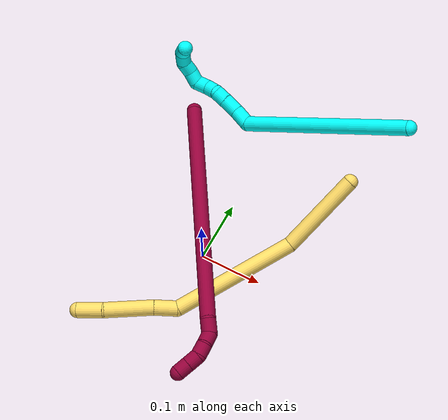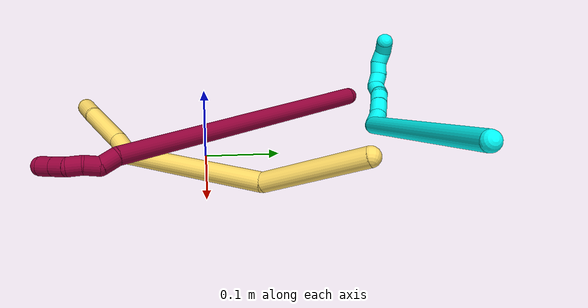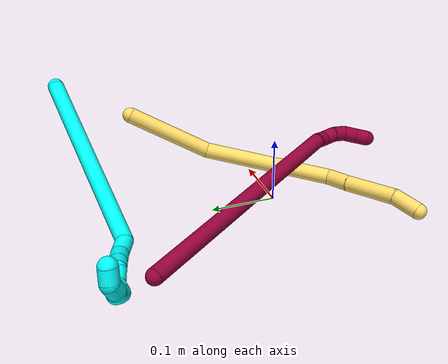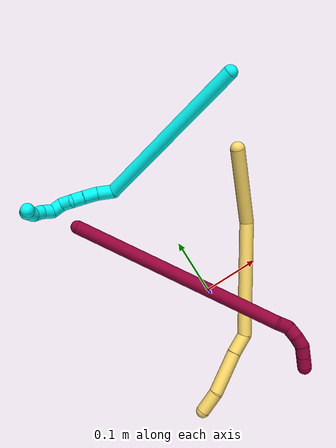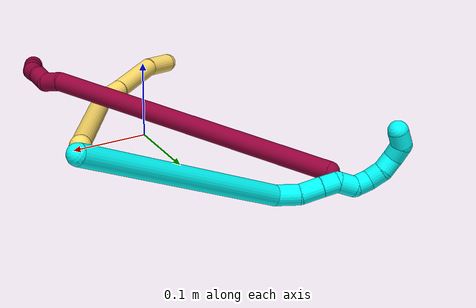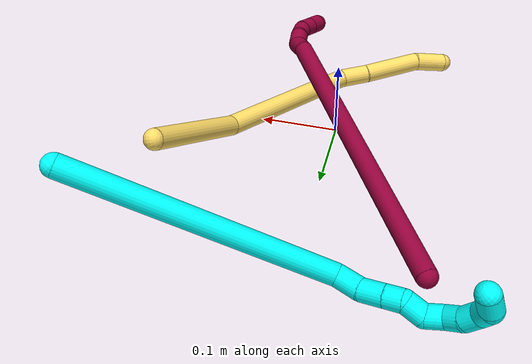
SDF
<sdf version="1.7">
 <world name="default">
  <model name="3">
   <static>0</static>
   <link name="3">
    <collision name="collision-cylinder-e_1_1_4">
     <pose>-0.024512 0.035489 0.142966 -0.243313 -0.164893 0.020205</pose>
     <geometry><cylinder><radius>0.0125</radius><length>0.298661</length></cylinder></geometry>
     <surface>
      <friction><ode><mu>1.16</mu><mu2>1.16</mu2><slip1>0</slip1><slip2>0</slip2></ode></friction>
      <contact><ode><kp>1e+06</kp><kd>1</kd><max_vel>0</max_vel><min_depth>0.001</min_depth></ode></contact>
     </surface>
    </collision>
    <visual name="visual-cylinder-e_1_1_4">
     <pose>-0.024512 0.035489 0.142966 -0.243313 -0.164893 0.020205</pose>
     <geometry><cylinder><radius>0.0125</radius><length>0.298661</length></cylinder></geometry>
     <material><ambient>0.003922 1 0.996078 1</ambient></material>
    </visual>
    <collision name="collision-cylinder-e_2_4_5">
     <pose>-0.060514 0.071444 0.295275 -0.049941 -0.887465 0.023743</pose>
     <geometry><cylinder><radius>0.0125</radius><length>0.029633</length></cylinder></geometry>
     <surface>
      <friction><ode><mu>1.16</mu><mu2>1.16</mu2><slip1>0</slip1><slip2>0</slip2></ode></friction>
      <contact><ode><kp>1e+06</kp><kd>1</kd><max_vel>0</max_vel><min_depth>0.001</min_depth></ode></contact>
     </surface>
    </collision>
    <visual name="visual-cylinder-e_2_4_5">
     <pose>-0.060514 0.071444 0.295275 -0.049941 -0.887465 0.023743</pose>
     <geometry><cylinder><radius>0.0125</radius><length>0.029633</length></cylinder></geometry>
     <material><ambient>0.003922 1 0.996078 1</ambient></material>
    </visual>
    <collision name="collision-cylinder-e_3_5_6">
     <pose>-0.083045 0.075877 0.311397 -0.529384 -0.952541 0.277859</pose>
     <geometry><cylinder><radius>0.0125</radius><length>0.027099</length></cylinder></geometry>
     <surface>
      <friction><ode><mu>1.16</mu><mu2>1.16</mu2><slip1>0</slip1><slip2>0</slip2></ode></friction>
      <contact><ode><kp>1e+06</kp><kd>1</kd><max_vel>0</max_vel><min_depth>0.001</min_depth></ode></contact>
     </surface>
    </collision>
    <visual name="visual-cylinder-e_3_5_6">
     <pose>-0.083045 0.075877 0.311397 -0.529384 -0.952541 0.277859</pose>
     <geometry><cylinder><radius>0.0125</radius><length>0.027099</length></cylinder></geometry>
     <material><ambient>0.003922 1 0.996078 1</ambient></material>
    </visual>
    <collision name="collision-cylinder-e_4_6_7">
     <pose>-0.102072 0.082806 0.323526 -0.505668 -0.917229 0.25375</pose>
     <geometry><cylinder><radius>0.0125</radius><length>0.020119</length></cylinder></geometry>
     <surface>
      <friction><ode><mu>1.16</mu><mu2>1.16</mu2><slip1>0</slip1><slip2>0</slip2></ode></friction>
      <contact><ode><kp>1e+06</kp><kd>1</kd><max_vel>0</max_vel><min_depth>0.001</min_depth></ode></contact>
     </surface>
    </collision>
    <visual name="visual-cylinder-e_4_6_7">
     <pose>-0.102072 0.082806 0.323526 -0.505668 -0.917229 0.25375</pose>
     <geometry><cylinder><radius>0.0125</radius><length>0.020119</length></cylinder></geometry>
     <material><ambient>0.003922 1 0.996078 1</ambient></material>
    </visual>
    <collision name="collision-cylinder-e_5_7_8">
     <pose>-0.115253 0.085155 0.338801 0.061755 -0.481385 -0.015162</pose>
     <geometry><cylinder><radius>0.0125</radius><length>0.022436</length></cylinder></geometry>
     <surface>
      <friction><ode><mu>1.16</mu><mu2>1.16</mu2><slip1>0</slip1><slip2>0</slip2></ode></friction>
      <contact><ode><kp>1e+06</kp><kd>1</kd><max_vel>0</max_vel><min_depth>0.001</min_depth></ode></contact>
     </surface>
    </collision>
    <visual name="visual-cylinder-e_5_7_8">
     <pose>-0.115253 0.085155 0.338801 0.061755 -0.481385 -0.015162</pose>
     <geometry><cylinder><radius>0.0125</radius><length>0.022436</length></cylinder></geometry>
     <material><ambient>0.003922 1 0.996078 1</ambient></material>
    </visual>
    <collision name="collision-cylinder-e_6_8_9">
     <pose>-0.126568 0.089966 0.355545 -0.671919 -0.61237 0.21989</pose>
     <geometry><cylinder><radius>0.0125</radius><length>0.021298</length></cylinder></geometry>
     <surface>
      <friction><ode><mu>1.16</mu><mu2>1.16</mu2><slip1>0</slip1><slip2>0</slip2></ode></friction>
      <contact><ode><kp>1e+06</kp><kd>1</kd><max_vel>0</max_vel><min_depth>0.001</min_depth></ode></contact>
     </surface>
    </collision>
    <visual name="visual-cylinder-e_6_8_9">
     <pose>-0.126568 0.089966 0.355545 -0.671919 -0.61237 0.21989</pose>
     <geometry><cylinder><radius>0.0125</radius><length>0.021298</length></cylinder></geometry>
     <material><ambient>0.003922 1 0.996078 1</ambient></material>
    </visual>
    <collision name="collision-cylinder-e_7_9_10">
     <pose>-0.142526 0.098528 0.363378 -1.25853 -1.24735 0.964958</pose>
     <geometry><cylinder><radius>0.0125</radius><length>0.02075</length></cylinder></geometry>
     <surface>
      <friction><ode><mu>1.16</mu><mu2>1.16</mu2><slip1>0</slip1><slip2>0</slip2></ode></friction>
      <contact><ode><kp>1e+06</kp><kd>1</kd><max_vel>0</max_vel><min_depth>0.001</min_depth></ode></contact>
     </surface>
    </collision>
    <visual name="visual-cylinder-e_7_9_10">
     <pose>-0.142526 0.098528 0.363378 -1.25853 -1.24735 0.964958</pose>
     <geometry><cylinder><radius>0.0125</radius><length>0.02075</length></cylinder></geometry>
     <material><ambient>0.003922 1 0.996078 1</ambient></material>
    </visual>
    <collision name="collision-cylinder-e_8_10_11">
     <pose>-0.160567 0.107359 0.363842 -1.66694 -0.962013 1.04313</pose>
     <geometry><cylinder><radius>0.0125</radius><length>0.020002</length></cylinder></geometry>
     <surface>
      <friction><ode><mu>1.16</mu><mu2>1.16</mu2><slip1>0</slip1><slip2>0</slip2></ode></friction>
      <contact><ode><kp>1e+06</kp><kd>1</kd><max_vel>0</max_vel><min_depth>0.001</min_depth></ode></contact>
     </surface>
    </collision>
    <visual name="visual-cylinder-e_8_10_11">
     <pose>-0.160567 0.107359 0.363842 -1.66694 -0.962013 1.04313</pose>
     <geometry><cylinder><radius>0.0125</radius><length>0.020002</length></cylinder></geometry>
     <material><ambient>0.003922 1 0.996078 1</ambient></material>
    </visual>
    <collision name="collision-cylinder-e_9_11_12">
     <pose>-0.177391 0.115855 0.359066 -2.55606 -1.03893 2.17139</pose>
     <geometry><cylinder><radius>0.0125</radius><length>0.020001</length></cylinder></geometry>
     <surface>
      <friction><ode><mu>1.16</mu><mu2>1.16</mu2><slip1>0</slip1><slip2>0</slip2></ode></friction>
      <contact><ode><kp>1e+06</kp><kd>1</kd><max_vel>0</max_vel><min_depth>0.001</min_depth></ode></contact>
     </surface>
    </collision>
    <visual name="visual-cylinder-e_9_11_12">
     <pose>-0.177391 0.115855 0.359066 -2.55606 -1.03893 2.17139</pose>
     <geometry><cylinder><radius>0.0125</radius><length>0.020001</length></cylinder></geometry>
     <material><ambient>0.003922 1 0.996078 1</ambient></material>
    </visual>
    <collision name="collision-cylinder-e_10_12_2">
     <pose>-0.189084 0.122489 0.346128 -2.72719 -0.312447 1.28605</pose>
     <geometry><cylinder><radius>0.0125</radius><length>0.020002</length></cylinder></geometry>
     <surface>
      <friction><ode><mu>1.16</mu><mu2>1.16</mu2><slip1>0</slip1><slip2>0</slip2></ode></friction>
      <contact><ode><kp>1e+06</kp><kd>1</kd><max_vel>0</max_vel><min_depth>0.001</min_depth></ode></contact>
     </surface>
    </collision>
    <visual name="visual-cylinder-e_10_12_2">
     <pose>-0.189084 0.122489 0.346128 -2.72719 -0.312447 1.28605</pose>
     <geometry><cylinder><radius>0.0125</radius><length>0.020002</length></cylinder></geometry>
     <material><ambient>0.003922 1 0.996078 1</ambient></material>
    </visual>
    <collision name="collision-sphere-2">
     <pose>-0.192158 0.126321 0.337417 0 -0 0</pose>
     <geometry><sphere><radius>0.0125</radius></sphere></geometry>
     <surface>
      <friction><ode><mu>1.16</mu><mu2>1.16</mu2><slip1>0</slip1><slip2>0</slip2></ode></friction>
      <contact><ode><kp>1e+06</kp><kd>1</kd><max_vel>0</max_vel><min_depth>0.001</min_depth></ode></contact>
     </surface>
    </collision>
    <visual name="visual-sphere-2">
     <pose>-0.192158 0.126321 0.337417 0 -0 0</pose>
     <geometry><sphere><radius>0.0125</radius></sphere></geometry>
     <material><ambient>0.003922 1 0.996078 1</ambient></material>
    </visual>
    <collision name="collision-sphere-12">
     <pose>-0.18601 0.118658 0.354839 0 -0 0</pose>
     <geometry><sphere><radius>0.0125</radius></sphere></geometry>
     <surface>
      <friction><ode><mu>1.16</mu><mu2>1.16</mu2><slip1>0</slip1><slip2>0</slip2></ode></friction>
      <contact><ode><kp>1e+06</kp><kd>1</kd><max_vel>0</max_vel><min_depth>0.001</min_depth></ode></contact>
     </surface>
    </collision>
    <visual name="visual-sphere-12">
     <pose>-0.18601 0.118658 0.354839 0 -0 0</pose>
     <geometry><sphere><radius>0.0125</radius></sphere></geometry>
     <material><ambient>0.003922 1 0.996078 1</ambient></material>
    </visual>
    <collision name="collision-sphere-11">
     <pose>-0.168772 0.113052 0.363293 0 -0 0</pose>
     <geometry><sphere><radius>0.0125</radius></sphere></geometry>
     <surface>
      <friction><ode><mu>1.16</mu><mu2>1.16</mu2><slip1>0</slip1><slip2>0</slip2></ode></friction>
      <contact><ode><kp>1e+06</kp><kd>1</kd><max_vel>0</max_vel><min_depth>0.001</min_depth></ode></contact>
     </surface>
    </collision>
    <visual name="visual-sphere-11">
     <pose>-0.168772 0.113052 0.363293 0 -0 0</pose>
     <geometry><sphere><radius>0.0125</radius></sphere></geometry>
     <material><ambient>0.003922 1 0.996078 1</ambient></material>
    </visual>
    <collision name="collision-sphere-10">
     <pose>-0.152363 0.101666 0.364391 0 -0 0</pose>
     <geometry><sphere><radius>0.0125</radius></sphere></geometry>
     <surface>
      <friction><ode><mu>1.16</mu><mu2>1.16</mu2><slip1>0</slip1><slip2>0</slip2></ode></friction>
      <contact><ode><kp>1e+06</kp><kd>1</kd><max_vel>0</max_vel><min_depth>0.001</min_depth></ode></contact>
     </surface>
    </collision>
    <visual name="visual-sphere-10">
     <pose>-0.152363 0.101666 0.364391 0 -0 0</pose>
     <geometry><sphere><radius>0.0125</radius></sphere></geometry>
     <material><ambient>0.003922 1 0.996078 1</ambient></material>
    </visual>
    <collision name="collision-sphere-9">
     <pose>-0.132689 0.09539 0.362365 0 -0 0</pose>
     <geometry><sphere><radius>0.0125</radius></sphere></geometry>
     <surface>
      <friction><ode><mu>1.16</mu><mu2>1.16</mu2><slip1>0</slip1><slip2>0</slip2></ode></friction>
      <contact><ode><kp>1e+06</kp><kd>1</kd><max_vel>0</max_vel><min_depth>0.001</min_depth></ode></contact>
     </surface>
    </collision>
    <visual name="visual-sphere-9">
     <pose>-0.132689 0.09539 0.362365 0 -0 0</pose>
     <geometry><sphere><radius>0.0125</radius></sphere></geometry>
     <material><ambient>0.003922 1 0.996078 1</ambient></material>
    </visual>
    <collision name="collision-sphere-4">
     <pose>-0.049024 0.070977 0.285932 0 -0 0</pose>
     <geometry><sphere><radius>0.0125</radius></sphere></geometry>
     <surface>
      <friction><ode><mu>1.16</mu><mu2>1.16</mu2><slip1>0</slip1><slip2>0</slip2></ode></friction>
      <contact><ode><kp>1e+06</kp><kd>1</kd><max_vel>0</max_vel><min_depth>0.001</min_depth></ode></contact>
     </surface>
    </collision>
    <visual name="visual-sphere-4">
     <pose>-0.049024 0.070977 0.285932 0 -0 0</pose>
     <geometry><sphere><radius>0.0125</radius></sphere></geometry>
     <material><ambient>0.003922 1 0.996078 1</ambient></material>
    </visual>
    <collision name="collision-sphere-1">
     <geometry><sphere><radius>0.0125</radius></sphere></geometry>
     <surface>
      <friction><ode><mu>1.16</mu><mu2>1.16</mu2><slip1>0</slip1><slip2>0</slip2></ode></friction>
      <contact><ode><kp>1e+06</kp><kd>1</kd><max_vel>0</max_vel><min_depth>0.001</min_depth></ode></contact>
     </surface>
    </collision>
    <visual name="visual-sphere-1">
     <geometry><sphere><radius>0.0125</radius></sphere></geometry>
     <material><ambient>0.003922 1 0.996078 1</ambient></material>
    </visual>
    <collision name="collision-sphere-8">
     <pose>-0.120447 0.084541 0.348725 0 -0 0</pose>
     <geometry><sphere><radius>0.0125</radius></sphere></geometry>
     <surface>
      <friction><ode><mu>1.16</mu><mu2>1.16</mu2><slip1>0</slip1><slip2>0</slip2></ode></friction>
      <contact><ode><kp>1e+06</kp><kd>1</kd><max_vel>0</max_vel><min_depth>0.001</min_depth></ode></contact>
     </surface>
    </collision>
    <visual name="visual-sphere-8">
     <pose>-0.120447 0.084541 0.348725 0 -0 0</pose>
     <geometry><sphere><radius>0.0125</radius></sphere></geometry>
     <material><ambient>0.003922 1 0.996078 1</ambient></material>
    </visual>
    <collision name="collision-sphere-5">
     <pose>-0.072003 0.071911 0.304618 0 -0 0</pose>
     <geometry><sphere><radius>0.0125</radius></sphere></geometry>
     <surface>
      <friction><ode><mu>1.16</mu><mu2>1.16</mu2><slip1>0</slip1><slip2>0</slip2></ode></friction>
      <contact><ode><kp>1e+06</kp><kd>1</kd><max_vel>0</max_vel><min_depth>0.001</min_depth></ode></contact>
     </surface>
    </collision>
    <visual name="visual-sphere-5">
     <pose>-0.072003 0.071911 0.304618 0 -0 0</pose>
     <geometry><sphere><radius>0.0125</radius></sphere></geometry>
     <material><ambient>0.003922 1 0.996078 1</ambient></material>
    </visual>
    <collision name="collision-sphere-6">
     <pose>-0.094086 0.079843 0.318175 0 -0 0</pose>
     <geometry><sphere><radius>0.0125</radius></sphere></geometry>
     <surface>
      <friction><ode><mu>1.16</mu><mu2>1.16</mu2><slip1>0</slip1><slip2>0</slip2></ode></friction>
      <contact><ode><kp>1e+06</kp><kd>1</kd><max_vel>0</max_vel><min_depth>0.001</min_depth></ode></contact>
     </surface>
    </collision>
    <visual name="visual-sphere-6">
     <pose>-0.094086 0.079843 0.318175 0 -0 0</pose>
     <geometry><sphere><radius>0.0125</radius></sphere></geometry>
     <material><ambient>0.003922 1 0.996078 1</ambient></material>
    </visual>
    <collision name="collision-sphere-7">
     <pose>-0.110059 0.085768 0.328877 0 -0 0</pose>
     <geometry><sphere><radius>0.0125</radius></sphere></geometry>
     <surface>
      <friction><ode><mu>1.16</mu><mu2>1.16</mu2><slip1>0</slip1><slip2>0</slip2></ode></friction>
      <contact><ode><kp>1e+06</kp><kd>1</kd><max_vel>0</max_vel><min_depth>0.001</min_depth></ode></contact>
     </surface>
    </collision>
    <visual name="visual-sphere-7">
     <pose>-0.110059 0.085768 0.328877 0 -0 0</pose>
     <geometry><sphere><radius>0.0125</radius></sphere></geometry>
     <material><ambient>0.003922 1 0.996078 1</ambient></material>
    </visual>
    <inertial>
     <pose>-0.064397 0.058448 0.220984 0 -0 0</pose>
     <mass>0.5</mass>
     <inertia>
      <ixx>0.002243</ixx>
      <ixy>0</ixy>
      <ixz>0</ixz>
      <iyy>0.00224</iyy>
      <iyz>0</iyz>
      <izz>-0.00013</izz>
     </inertia>
    </inertial>
   </link>
   <pose>0.214023 0.28767 0.146259 2.51827 0.569187 -0.835153</pose>
  </model>
  <model name="5">
   <static>0</static>
   <link name="5">
    <collision name="collision-cylinder-e_1_1_4">
     <pose>-0.03712 -0.057632 -0.00335 1.62886 -0.571437 -0.603632</pose>
     <geometry><cylinder><radius>0.0125</radius><length>0.137267</length></cylinder></geometry>
     <surface>
      <friction><ode><mu>1.16</mu><mu2>1.16</mu2><slip1>0</slip1><slip2>0</slip2></ode></friction>
      <contact><ode><kp>1e+06</kp><kd>1</kd><max_vel>0</max_vel><min_depth>0.001</min_depth></ode></contact>
     </surface>
    </collision>
    <visual name="visual-cylinder-e_1_1_4">
     <pose>-0.03712 -0.057632 -0.00335 1.62886 -0.571437 -0.603632</pose>
     <geometry><cylinder><radius>0.0125</radius><length>0.137267</length></cylinder></geometry>
     <material><ambient>1 0.858824 0.4 1</ambient></material>
    </visual>
    <collision name="collision-cylinder-e_2_4_5">
     <pose>-0.108244 -0.207835 0.020614 1.28388 -0.338739 -0.254298</pose>
     <geometry><cylinder><radius>0.0125</radius><length>0.204663</length></cylinder></geometry>
     <surface>
      <friction><ode><mu>1.16</mu><mu2>1.16</mu2><slip1>0</slip1><slip2>0</slip2></ode></friction>
      <contact><ode><kp>1e+06</kp><kd>1</kd><max_vel>0</max_vel><min_depth>0.001</min_depth></ode></contact>
     </surface>
    </collision>
    <visual name="visual-cylinder-e_2_4_5">
     <pose>-0.108244 -0.207835 0.020614 1.28388 -0.338739 -0.254298</pose>
     <geometry><cylinder><radius>0.0125</radius><length>0.204663</length></cylinder></geometry>
     <material><ambient>1 0.858824 0.4 1</ambient></material>
    </visual>
    <collision name="collision-cylinder-e_3_5_6">
     <pose>-0.148078 -0.311707 0.06168 0.68789 -0.316497 -0.114195</pose>
     <geometry><cylinder><radius>0.0125</radius><length>0.03746</length></cylinder></geometry>
     <surface>
      <friction><ode><mu>1.16</mu><mu2>1.16</mu2><slip1>0</slip1><slip2>0</slip2></ode></friction>
      <contact><ode><kp>1e+06</kp><kd>1</kd><max_vel>0</max_vel><min_depth>0.001</min_depth></ode></contact>
     </surface>
    </collision>
    <visual name="visual-cylinder-e_3_5_6">
     <pose>-0.148078 -0.311707 0.06168 0.68789 -0.316497 -0.114195</pose>
     <geometry><cylinder><radius>0.0125</radius><length>0.03746</length></cylinder></geometry>
     <material><ambient>1 0.858824 0.4 1</ambient></material>
    </visual>
    <collision name="collision-cylinder-e_4_6_7">
     <pose>-0.165669 -0.349752 0.101701 0.794366 -0.304007 -0.128339</pose>
     <geometry><cylinder><radius>0.0125</radius><length>0.078578</length></cylinder></geometry>
     <surface>
      <friction><ode><mu>1.16</mu><mu2>1.16</mu2><slip1>0</slip1><slip2>0</slip2></ode></friction>
      <contact><ode><kp>1e+06</kp><kd>1</kd><max_vel>0</max_vel><min_depth>0.001</min_depth></ode></contact>
     </surface>
    </collision>
    <visual name="visual-cylinder-e_4_6_7">
     <pose>-0.165669 -0.349752 0.101701 0.794366 -0.304007 -0.128339</pose>
     <geometry><cylinder><radius>0.0125</radius><length>0.078578</length></cylinder></geometry>
     <material><ambient>1 0.858824 0.4 1</ambient></material>
    </visual>
    <collision name="collision-cylinder-e_5_7_2">
     <pose>-0.188372 -0.38779 0.141913 0.680792 -0.547617 -0.198301</pose>
     <geometry><cylinder><radius>0.0125</radius><length>0.042032</length></cylinder></geometry>
     <surface>
      <friction><ode><mu>1.16</mu><mu2>1.16</mu2><slip1>0</slip1><slip2>0</slip2></ode></friction>
      <contact><ode><kp>1e+06</kp><kd>1</kd><max_vel>0</max_vel><min_depth>0.001</min_depth></ode></contact>
     </surface>
    </collision>
    <visual name="visual-cylinder-e_5_7_2">
     <pose>-0.188372 -0.38779 0.141913 0.680792 -0.547617 -0.198301</pose>
     <geometry><cylinder><radius>0.0125</radius><length>0.042032</length></cylinder></geometry>
     <material><ambient>1 0.858824 0.4 1</ambient></material>
    </visual>
    <collision name="collision-sphere-2">
     <pose>-0.199314 -0.399083 0.155856 0 -0 0</pose>
     <geometry><sphere><radius>0.0125</radius></sphere></geometry>
     <surface>
      <friction><ode><mu>1.16</mu><mu2>1.16</mu2><slip1>0</slip1><slip2>0</slip2></ode></friction>
      <contact><ode><kp>1e+06</kp><kd>1</kd><max_vel>0</max_vel><min_depth>0.001</min_depth></ode></contact>
     </surface>
    </collision>
    <visual name="visual-sphere-2">
     <pose>-0.199314 -0.399083 0.155856 0 -0 0</pose>
     <geometry><sphere><radius>0.0125</radius></sphere></geometry>
     <material><ambient>1 0.858824 0.4 1</ambient></material>
    </visual>
    <collision name="collision-sphere-7">
     <pose>-0.17743 -0.376497 0.12797 0 -0 0</pose>
     <geometry><sphere><radius>0.0125</radius></sphere></geometry>
     <surface>
      <friction><ode><mu>1.16</mu><mu2>1.16</mu2><slip1>0</slip1><slip2>0</slip2></ode></friction>
      <contact><ode><kp>1e+06</kp><kd>1</kd><max_vel>0</max_vel><min_depth>0.001</min_depth></ode></contact>
     </surface>
    </collision>
    <visual name="visual-sphere-7">
     <pose>-0.17743 -0.376497 0.12797 0 -0 0</pose>
     <geometry><sphere><radius>0.0125</radius></sphere></geometry>
     <material><ambient>1 0.858824 0.4 1</ambient></material>
    </visual>
    <collision name="collision-sphere-6">
     <pose>-0.153908 -0.323008 0.075432 0 -0 0</pose>
     <geometry><sphere><radius>0.0125</radius></sphere></geometry>
     <surface>
      <friction><ode><mu>1.16</mu><mu2>1.16</mu2><slip1>0</slip1><slip2>0</slip2></ode></friction>
      <contact><ode><kp>1e+06</kp><kd>1</kd><max_vel>0</max_vel><min_depth>0.001</min_depth></ode></contact>
     </surface>
    </collision>
    <visual name="visual-sphere-6">
     <pose>-0.153908 -0.323008 0.075432 0 -0 0</pose>
     <geometry><sphere><radius>0.0125</radius></sphere></geometry>
     <material><ambient>1 0.858824 0.4 1</ambient></material>
    </visual>
    <collision name="collision-sphere-5">
     <pose>-0.142248 -0.300405 0.047928 0 -0 0</pose>
     <geometry><sphere><radius>0.0125</radius></sphere></geometry>
     <surface>
      <friction><ode><mu>1.16</mu><mu2>1.16</mu2><slip1>0</slip1><slip2>0</slip2></ode></friction>
      <contact><ode><kp>1e+06</kp><kd>1</kd><max_vel>0</max_vel><min_depth>0.001</min_depth></ode></contact>
     </surface>
    </collision>
    <visual name="visual-sphere-5">
     <pose>-0.142248 -0.300405 0.047928 0 -0 0</pose>
     <geometry><sphere><radius>0.0125</radius></sphere></geometry>
     <material><ambient>1 0.858824 0.4 1</ambient></material>
    </visual>
    <collision name="collision-sphere-1">
     <geometry><sphere><radius>0.0125</radius></sphere></geometry>
     <surface>
      <friction><ode><mu>1.16</mu><mu2>1.16</mu2><slip1>0</slip1><slip2>0</slip2></ode></friction>
      <contact><ode><kp>1e+06</kp><kd>1</kd><max_vel>0</max_vel><min_depth>0.001</min_depth></ode></contact>
     </surface>
    </collision>
    <visual name="visual-sphere-1">
     <geometry><sphere><radius>0.0125</radius></sphere></geometry>
     <material><ambient>1 0.858824 0.4 1</ambient></material>
    </visual>
    <collision name="collision-sphere-4">
     <pose>-0.07424 -0.115264 -0.0067 0 -0 0</pose>
     <geometry><sphere><radius>0.0125</radius></sphere></geometry>
     <surface>
      <friction><ode><mu>1.16</mu><mu2>1.16</mu2><slip1>0</slip1><slip2>0</slip2></ode></friction>
      <contact><ode><kp>1e+06</kp><kd>1</kd><max_vel>0</max_vel><min_depth>0.001</min_depth></ode></contact>
     </surface>
    </collision>
    <visual name="visual-sphere-4">
     <pose>-0.07424 -0.115264 -0.0067 0 -0 0</pose>
     <geometry><sphere><radius>0.0125</radius></sphere></geometry>
     <material><ambient>1 0.858824 0.4 1</ambient></material>
    </visual>
    <inertial>
     <pose>-0.107463 -0.211812 0.040052 0 -0 0</pose>
     <mass>0.5</mass>
     <inertia><ixx>0.000566</ixx><ixy>0</ixy><ixz>0</ixz><iyy>4e-05</iyy><iyz>0</iyz><izz>0.001267</izz></inertia>
    </inertial>
   </link>
   <pose>0.166405 0.181361 0.100091 -0.171959 -1.13696 -0.019685</pose>
  </model>
  <model name="8">
   <static>0</static>
   <link name="8">
    <collision name="collision-cylinder-e_1_1_4">
     <pose>-0.002075 -0.172048 0.097331 1.05596 -0.010496 -0.006121</pose>
     <geometry><cylinder><radius>0.0125</radius><length>0.395364</length></cylinder></geometry>
     <surface>
      <friction><ode><mu>1.16</mu><mu2>1.16</mu2><slip1>0</slip1><slip2>0</slip2></ode></friction>
      <contact><ode><kp>1e+06</kp><kd>1</kd><max_vel>0</max_vel><min_depth>0.001</min_depth></ode></contact>
     </surface>
    </collision>
    <visual name="visual-cylinder-e_1_1_4">
     <pose>-0.002075 -0.172048 0.097331 1.05596 -0.010496 -0.006121</pose>
     <geometry><cylinder><radius>0.0125</radius><length>0.395364</length></cylinder></geometry>
     <material><ambient>0.584314 0 0.227451 1</ambient></material>
    </visual>
    <collision name="collision-cylinder-e_2_4_5">
     <pose>-0.007636 -0.353078 0.201756 0.902349 -0.295691 -0.144067</pose>
     <geometry><cylinder><radius>0.0125</radius><length>0.023928</length></cylinder></geometry>
     <surface>
      <friction><ode><mu>1.16</mu><mu2>1.16</mu2><slip1>0</slip1><slip2>0</slip2></ode></friction>
      <contact><ode><kp>1e+06</kp><kd>1</kd><max_vel>0</max_vel><min_depth>0.001</min_depth></ode></contact>
     </surface>
    </collision>
    <visual name="visual-cylinder-e_2_4_5">
     <pose>-0.007636 -0.353078 0.201756 0.902349 -0.295691 -0.144067</pose>
     <geometry><cylinder><radius>0.0125</radius><length>0.023928</length></cylinder></geometry>
     <material><ambient>0.584314 0 0.227451 1</ambient></material>
    </visual>
    <collision name="collision-cylinder-e_3_5_6">
     <pose>-0.007735 -0.368624 0.216022 0.741085 0.335262 0.13129</pose>
     <geometry><cylinder><radius>0.0125</radius><length>0.020593</length></cylinder></geometry>
     <surface>
      <friction><ode><mu>1.16</mu><mu2>1.16</mu2><slip1>0</slip1><slip2>0</slip2></ode></friction>
      <contact><ode><kp>1e+06</kp><kd>1</kd><max_vel>0</max_vel><min_depth>0.001</min_depth></ode></contact>
     </surface>
    </collision>
    <visual name="visual-cylinder-e_3_5_6">
     <pose>-0.007735 -0.368624 0.216022 0.741085 0.335262 0.13129</pose>
     <geometry><cylinder><radius>0.0125</radius><length>0.020593</length></cylinder></geometry>
     <material><ambient>0.584314 0 0.227451 1</ambient></material>
    </visual>
    <collision name="collision-cylinder-e_4_6_7">
     <pose>-0.002769 -0.380033 0.231831 0.51128 0.158081 0.041396</pose>
     <geometry><cylinder><radius>0.0125</radius><length>0.020054</length></cylinder></geometry>
     <surface>
      <friction><ode><mu>1.16</mu><mu2>1.16</mu2><slip1>0</slip1><slip2>0</slip2></ode></friction>
      <contact><ode><kp>1e+06</kp><kd>1</kd><max_vel>0</max_vel><min_depth>0.001</min_depth></ode></contact>
     </surface>
    </collision>
    <visual name="visual-cylinder-e_4_6_7">
     <pose>-0.002769 -0.380033 0.231831 0.51128 0.158081 0.041396</pose>
     <geometry><cylinder><radius>0.0125</radius><length>0.020054</length></cylinder></geometry>
     <material><ambient>0.584314 0 0.227451 1</ambient></material>
    </visual>
    <collision name="collision-cylinder-e_5_7_8">
     <pose>0.001287 -0.385536 0.250133 0.067999 0.250332 0.008559</pose>
     <geometry><cylinder><radius>0.0125</radius><length>0.020001</length></cylinder></geometry>
     <surface>
      <friction><ode><mu>1.16</mu><mu2>1.16</mu2><slip1>0</slip1><slip2>0</slip2></ode></friction>
      <contact><ode><kp>1e+06</kp><kd>1</kd><max_vel>0</max_vel><min_depth>0.001</min_depth></ode></contact>
     </surface>
    </collision>
    <visual name="visual-cylinder-e_5_7_8">
     <pose>0.001287 -0.385536 0.250133 0.067999 0.250332 0.008559</pose>
     <geometry><cylinder><radius>0.0125</radius><length>0.020001</length></cylinder></geometry>
     <material><ambient>0.584314 0 0.227451 1</ambient></material>
    </visual>
    <collision name="collision-cylinder-e_6_8_2">
     <pose>0.006333 -0.38688 0.26947 0.070814 0.258995 0.009226</pose>
     <geometry><cylinder><radius>0.0125</radius><length>0.02006</length></cylinder></geometry>
     <surface>
      <friction><ode><mu>1.16</mu><mu2>1.16</mu2><slip1>0</slip1><slip2>0</slip2></ode></friction>
      <contact><ode><kp>1e+06</kp><kd>1</kd><max_vel>0</max_vel><min_depth>0.001</min_depth></ode></contact>
     </surface>
    </collision>
    <visual name="visual-cylinder-e_6_8_2">
     <pose>0.006333 -0.38688 0.26947 0.070814 0.258995 0.009226</pose>
     <geometry><cylinder><radius>0.0125</radius><length>0.02006</length></cylinder></geometry>
     <material><ambient>0.584314 0 0.227451 1</ambient></material>
    </visual>
    <collision name="collision-sphere-2">
     <pose>0.008902 -0.387566 0.279141 0 -0 0</pose>
     <geometry><sphere><radius>0.0125</radius></sphere></geometry>
     <surface>
      <friction><ode><mu>1.16</mu><mu2>1.16</mu2><slip1>0</slip1><slip2>0</slip2></ode></friction>
      <contact><ode><kp>1e+06</kp><kd>1</kd><max_vel>0</max_vel><min_depth>0.001</min_depth></ode></contact>
     </surface>
    </collision>
    <visual name="visual-sphere-2">
     <pose>0.008902 -0.387566 0.279141 0 -0 0</pose>
     <geometry><sphere><radius>0.0125</radius></sphere></geometry>
     <material><ambient>0.584314 0 0.227451 1</ambient></material>
    </visual>
    <collision name="collision-sphere-4">
     <pose>-0.00415 -0.344096 0.194663 0 -0 0</pose>
     <geometry><sphere><radius>0.0125</radius></sphere></geometry>
     <surface>
      <friction><ode><mu>1.16</mu><mu2>1.16</mu2><slip1>0</slip1><slip2>0</slip2></ode></friction>
      <contact><ode><kp>1e+06</kp><kd>1</kd><max_vel>0</max_vel><min_depth>0.001</min_depth></ode></contact>
     </surface>
    </collision>
    <visual name="visual-sphere-4">
     <pose>-0.00415 -0.344096 0.194663 0 -0 0</pose>
     <geometry><sphere><radius>0.0125</radius></sphere></geometry>
     <material><ambient>0.584314 0 0.227451 1</ambient></material>
    </visual>
    <collision name="collision-sphere-1">
     <geometry><sphere><radius>0.0125</radius></sphere></geometry>
     <surface>
      <friction><ode><mu>1.16</mu><mu2>1.16</mu2><slip1>0</slip1><slip2>0</slip2></ode></friction>
      <contact><ode><kp>1e+06</kp><kd>1</kd><max_vel>0</max_vel><min_depth>0.001</min_depth></ode></contact>
     </surface>
    </collision>
    <visual name="visual-sphere-1">
     <geometry><sphere><radius>0.0125</radius></sphere></geometry>
     <material><ambient>0.584314 0 0.227451 1</ambient></material>
    </visual>
    <collision name="collision-sphere-8">
     <pose>0.003765 -0.386194 0.259799 0 -0 0</pose>
     <geometry><sphere><radius>0.0125</radius></sphere></geometry>
     <surface>
      <friction><ode><mu>1.16</mu><mu2>1.16</mu2><slip1>0</slip1><slip2>0</slip2></ode></friction>
      <contact><ode><kp>1e+06</kp><kd>1</kd><max_vel>0</max_vel><min_depth>0.001</min_depth></ode></contact>
     </surface>
    </collision>
    <visual name="visual-sphere-8">
     <pose>0.003765 -0.386194 0.259799 0 -0 0</pose>
     <geometry><sphere><radius>0.0125</radius></sphere></geometry>
     <material><ambient>0.584314 0 0.227451 1</ambient></material>
    </visual>
    <collision name="collision-sphere-5">
     <pose>-0.011122 -0.36206 0.208849 0 -0 0</pose>
     <geometry><sphere><radius>0.0125</radius></sphere></geometry>
     <surface>
      <friction><ode><mu>1.16</mu><mu2>1.16</mu2><slip1>0</slip1><slip2>0</slip2></ode></friction>
      <contact><ode><kp>1e+06</kp><kd>1</kd><max_vel>0</max_vel><min_depth>0.001</min_depth></ode></contact>
     </surface>
    </collision>
    <visual name="visual-sphere-5">
     <pose>-0.011122 -0.36206 0.208849 0 -0 0</pose>
     <geometry><sphere><radius>0.0125</radius></sphere></geometry>
     <material><ambient>0.584314 0 0.227451 1</ambient></material>
    </visual>
    <collision name="collision-sphere-6">
     <pose>-0.004347 -0.375188 0.223195 0 -0 0</pose>
     <geometry><sphere><radius>0.0125</radius></sphere></geometry>
     <surface>
      <friction><ode><mu>1.16</mu><mu2>1.16</mu2><slip1>0</slip1><slip2>0</slip2></ode></friction>
      <contact><ode><kp>1e+06</kp><kd>1</kd><max_vel>0</max_vel><min_depth>0.001</min_depth></ode></contact>
     </surface>
    </collision>
    <visual name="visual-sphere-6">
     <pose>-0.004347 -0.375188 0.223195 0 -0 0</pose>
     <geometry><sphere><radius>0.0125</radius></sphere></geometry>
     <material><ambient>0.584314 0 0.227451 1</ambient></material>
    </visual>
    <collision name="collision-sphere-7">
     <pose>-0.00119 -0.384878 0.240466 0 -0 0</pose>
     <geometry><sphere><radius>0.0125</radius></sphere></geometry>
     <surface>
      <friction><ode><mu>1.16</mu><mu2>1.16</mu2><slip1>0</slip1><slip2>0</slip2></ode></friction>
      <contact><ode><kp>1e+06</kp><kd>1</kd><max_vel>0</max_vel><min_depth>0.001</min_depth></ode></contact>
     </surface>
    </collision>
    <visual name="visual-sphere-7">
     <pose>-0.00119 -0.384878 0.240466 0 -0 0</pose>
     <geometry><sphere><radius>0.0125</radius></sphere></geometry>
     <material><ambient>0.584314 0 0.227451 1</ambient></material>
    </visual>
    <inertial>
     <pose>-0.00213 -0.214308 0.12563 0 -0 0</pose>
     <mass>0.5</mass>
     <inertia>
      <ixx>0.005142</ixx>
      <ixy>0</ixy>
      <ixz>0</ixz>
      <iyy>0.002488</iyy>
      <iyz>0</iyz>
      <izz>0.004574</izz>
     </inertia>
    </inertial>
   </link>
   <pose>-0.139201 0.223924 0.012451 -2.45242 -0.952575 -2.72989</pose>
  </model>
 </world>
</sdf>
